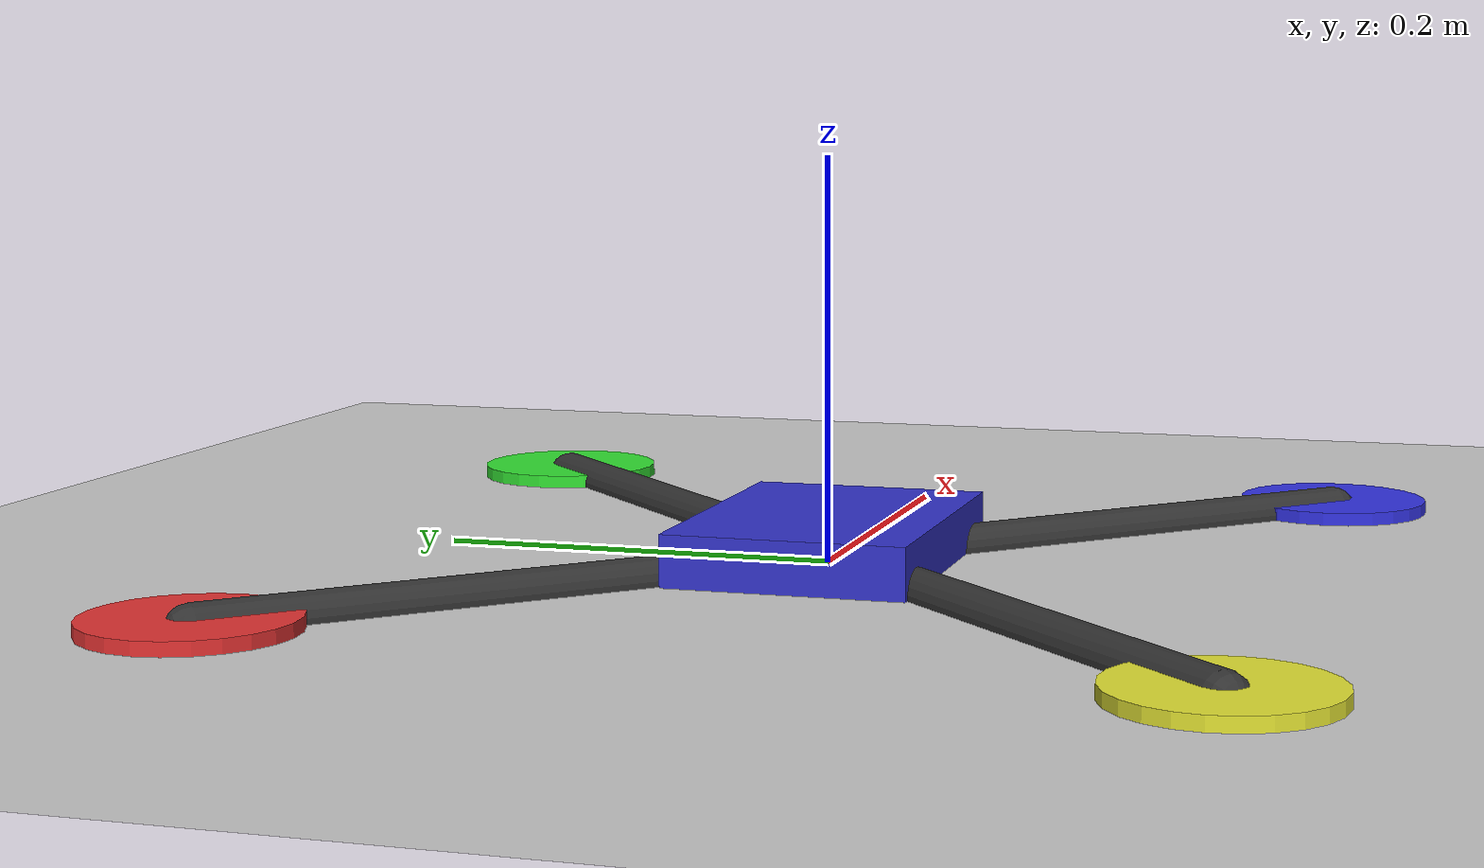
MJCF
<mujoco model="quadrotor">
    <compiler angle="radian"/>
    <option
        timestep="0.002"
        gravity="0 0 -9.81"
        integrator="RK4"
    />
    <visual>
        <global offwidth="1280" offheight="720"/>
    </visual>

    <worldbody>
        <light pos="0 0 8" dir="0 0 -1" diffuse="1 1 1"/>
        <geom name="ground" type="plane" pos="0 0 0" size="10 10 0.1" rgba="0.8 0.8 0.8 1"/>
        <body name="quadrotor">
            <freejoint name="root"/>
            <inertial pos="0 0 0" mass="1.2" diaginertia="0.0125 0.0125 0.022"/>
            <geom type="box" size="0.08 0.06 0.025" rgba="0.2 0.2 0.8 1"/>
            <geom type="capsule" fromto="0 0 0 -0.225 0.225 0" size="0.012" rgba="0.2 0.2 0.2 1"/>
            <geom type="capsule" fromto="0 0 0 0.225 0.225 0" size="0.012" rgba="0.2 0.2 0.2 1"/>
            <geom type="capsule" fromto="0 0 0 0.225 -0.225 0" size="0.012" rgba="0.2 0.2 0.2 1"/>
            <geom type="capsule" fromto="0 0 0 -0.225 -0.225 0" size="0.012" rgba="0.2 0.2 0.2 1"/>
            <geom type="cylinder" pos="-0.225 0.225 0" size="0.05 0.006" rgba="0.9 0.2 0.2 1"/>
            <geom type="cylinder" pos="0.225 0.225 0" size="0.05 0.006" rgba="0.2 0.9 0.2 1"/>
            <geom type="cylinder" pos="0.225 -0.225 0" size="0.05 0.006" rgba="0.2 0.2 0.9 1"/>
            <geom type="cylinder" pos="-0.225 -0.225 0" size="0.05 0.006" rgba="0.9 0.9 0.2 1"/>
            <site name="imu_site" pos="0 0 0" size="0.01"/>
        </body>
    </worldbody>
    <sensor>
        <accelerometer name="imu_accel" site="imu_site"/>
        <gyro name="imu_gyro" site="imu_site"/>
    </sensor>
</mujoco>
